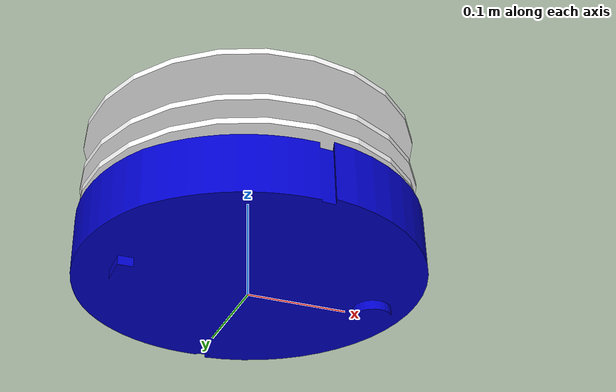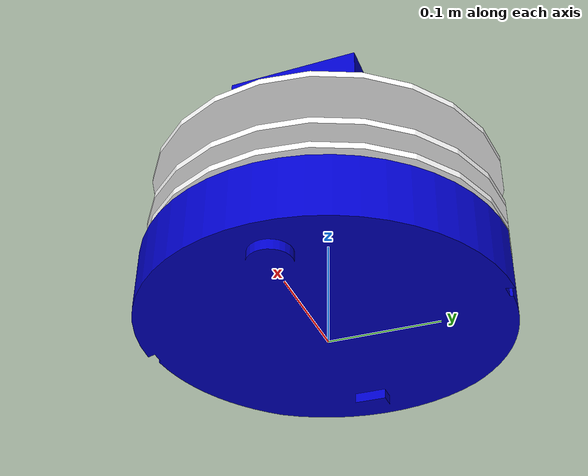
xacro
<?xml version="1.0"?>

<robot name="turtlebot"
    xmlns:sensor="http://playerstage.sourceforge.net/gazebo/xmlschema/#sensor"
    xmlns:controller="http://playerstage.sourceforge.net/gazebo/xmlschema/#controller"
    xmlns:interface="http://playerstage.sourceforge.net/gazebo/xmlschema/#interface">

    <!-- Included URDF Files -->
    <include filename="$(find turtlebot_urdf)/urdf/turtlebot_base.xacro" />

    <turtlebot />
</robot>

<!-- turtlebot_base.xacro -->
<robot
    xmlns:sensor="http://playerstage.sourceforge.net/gazebo/xmlschema/#sensor"
    xmlns:controller="http://playerstage.sourceforge.net/gazebo/xmlschema/#controller"
    xmlns:interface="http://playerstage.sourceforge.net/gazebo/xmlschema/#interface">

    <!-- Included URDF Files -->
    <include filename="$(find turtlebot_urdf)/urdf/materials.urdf.xacro" />

    <!-- Properties (Constants) -->
    <property name="M_PI" value="3.14159"/>

    <property name="base_size_x" value="0.33" />
    <property name="base_size_y" value="0.33" />
    <property name="base_calibration_factor" value="0.5" />

    <macro name="turtlebot">
        <!-- base_footprint is a fictitious link(frame) that is on the ground right below base_link origin,
             navigation stack depends on this frame -->
        <link name="base_footprint">
            <inertial>
                <mass value="0.0001" />
                <origin xyz="0 0 0" />
                <inertia ixx="0.0001" ixy="0.0" ixz="0.0"
                         iyy="0.0001" iyz="0.0"
                         izz="0.0001" />
            </inertial>

            <visual>
                <origin xyz="0 0 0" rpy="0 0 0" />
                <geometry>
                    <box size="0.001 0.001 0.001" />
                </geometry>
                <material name="Green" />
            </visual>

            <collision>
                <origin xyz="0 0 0.017" rpy="0 0 0" />
                <geometry>
                  <box size="0.001 0.001 0.001" />
                </geometry>
            </collision>
        </link>

        <joint name="base_footprint_joint" type="fixed">
            <!-- NB: While you would think this would make it go up, it is oddly reversed.
                 This moves the joint to 0,0,0 where we want it for rviz, etc. -->
            <origin xyz="0 0 0.017" rpy="0 0 0" />
            <parent link="base_footprint"/>
            <child link="base_link" />
        </joint>

        <!-- Links and Joints (i.e., the robot) -->
        <link name="base_link">
            <inertial>
                <mass value="12" />
                <origin xyz="${-base_size_x/2} 0 0.017" />
                <inertia ixx="1.0" ixy="0.0" ixz="0.0"
                         iyy="1.0" iyz="0.0"
                         izz="1.0" />
            </inertial>

            <visual>
                <origin xyz="0.0 0.0 0.02" rpy="0 0 0" />
                <geometry>
                    <mesh filename="package://turtlebot_urdf/meshes/create_body.dae"/>
                </geometry>
                <material name="Blue" />
            </visual>

            <collision>
                <origin xyz="0.0 0.0 0.0" rpy="0 0 0" />
                <geometry>
                    <mesh filename="package://turtlebot_urdf/meshes/create_body.stl"/>
                </geometry>
            </collision>
        </link>

        <joint name="imu_joint" type="fixed">
            <!-- NB: While you would think this would make it go up, it is oddly reversed.
                 This moves the joint to 0,0,0 where we want it for rviz, etc. -->
            <origin xyz="0 0 0.03" rpy="0 0 0" />
            <parent link="base_link"/>
            <child link="gyro_link" />
        </joint>

        <link name="gyro_link">
            <inertial>
                <mass value="0.01" />
                <origin xyz="0 0 0.03" />
                <inertia ixx="1.0" ixy="0.0" ixz="0.0"
                         iyy="1.0" iyz="0.0"
                         izz="1.0" />
            </inertial>

            <visual>
                <origin xyz="0.0 0.0 0.02" rpy="0 0 0" />
                <geometry>
                  <cylinder radius="0.002" length="0.006" />
                </geometry>
                <material name="Blue" />
            </visual>

        </link>

        <joint name="base_layer1_joint" type="fixed">
          <origin xyz="0 0 0.064" rpy="0 0 0" />
          <parent link="base_link" />
          <child link="base_layer1_link" />
        </joint>

        <link name="base_layer1_link">
          <visual>
            <geometry>
              <cylinder radius="0.165" length="0.006" />
            </geometry>
            <material name="White" />
          </visual>
          <inertial>
              <mass value="0.0001" />
              <origin xyz="0 0 0" />
              <inertia ixx="0.0001" ixy="0.0" ixz="0.0"
                       iyy="0.0001" iyz="0.0"
                       izz="0.0001" />
          </inertial>
        </link>

        <joint name="base_layer2_joint" type="fixed">
          <origin xyz="0 0 0.0254" rpy="0 0 0" />
          <parent link="base_layer1_link" />
          <child link="base_layer2_link" />
        </joint>

        <link name="base_layer2_link">
          <visual>
            <geometry>
              <cylinder radius="0.165" length="0.006" />
            </geometry>
            <material name="White" />
          </visual>
          <inertial>
              <mass value="0.0001" />
              <origin xyz="0 0 0" />
              <inertia ixx="0.0001" ixy="0.0" ixz="0.0"
                       iyy="0.0001" iyz="0.0"
                       izz="0.0001" />
          </inertial>
        </link>

        <joint name="base_layer3_joint" type="fixed">
          <origin xyz="0 0 0.0508" rpy="0 0 0" />
          <parent link="base_layer2_link" />
          <child link="base_layer3_link" />
        </joint>

        <link name="base_layer3_link">
          <visual>
            <geometry>
              <cylinder radius="0.165" length="0.006" />
            </geometry>
            <material name="White" />
          </visual>
          <inertial>
              <mass value="0.0001" />
              <origin xyz="0 0 0" />
              <inertia ixx="0.0001" ixy="0.0" ixz="0.0"
                       iyy="0.0001" iyz="0.0"
                       izz="0.0001" />
          </inertial>
        </link>

        <joint name="base_kinect_joint" type="fixed">
          <origin xyz="0.065 0 0.06" rpy="0 0 0" />
          <parent link="base_layer3_link" />
          <child link="base_kinect_link" />
        </joint>

        <link name="base_kinect_link">
          <visual>
            <geometry>
              <box size="0.064 0.121 0.0381" />
            </geometry>
            <material name="Blue" />
          </visual>
          <inertial>
              <mass value="0.0001" />
              <origin xyz="0 0 0" />
              <inertia ixx="0.0001" ixy="0.0" ixz="0.0"
                       iyy="0.0001" iyz="0.0"
                       izz="0.0001" />
          </inertial>
        </link>

        <joint name="base_kinect_depth_joint" type="fixed">
          <origin xyz="0 0.028 0" rpy="0 0 0" />
          <parent link="base_kinect_link" />
          <child link="base_kinect_depth_frame" />
        </joint>

        <link name="base_kinect_depth_frame">
          <inertial>
              <mass value="0.0001" />
              <origin xyz="0 0 0" />
              <inertia ixx="0.0001" ixy="0.0" ixz="0.0"
                       iyy="0.0001" iyz="0.0"
                       izz="0.0001" />
          </inertial>
        </link>

        <joint name="kinect_depth_optical_joint" type="fixed">
          <origin xyz="0 0 0" rpy="${-M_PI/2} 0 ${-M_PI/2}" />
          <parent link="base_kinect_depth_frame" />
          <child link="base_kinect_depth_optical_frame" />
        </joint>

        <link name="base_kinect_depth_optical_frame">
          <inertial>
              <mass value="0.0001" />
              <origin xyz="0 0 0" />
              <inertia ixx="0.0001" ixy="0.0" ixz="0.0"
                       iyy="0.0001" iyz="0.0"
                       izz="0.0001" />
          </inertial>
        </link>

        <joint name="base_kinect_rgb_joint" type="fixed">
          <origin xyz="0 -0.005 0" rpy="0 0 0" />
          <parent link="base_kinect_link" />
          <child link="base_kinect_rgb_frame" />
        </joint>

        <link name="base_kinect_rgb_frame">
          <inertial>
              <mass value="0.0001" />
              <origin xyz="0 0 0" />
              <inertia ixx="0.0001" ixy="0.0" ixz="0.0"
                       iyy="0.0001" iyz="0.0"
                       izz="0.0001" />
          </inertial>
        </link>

        <joint name="kinect_rgb_optical_joint" type="fixed">
          <origin xyz="0 0 0" rpy="${-M_PI/2} 0 ${-M_PI/2}" />
          <parent link="base_kinect_rgb_frame" />
          <child link="base_kinect_rgb_optical_frame" />
        </joint>

        <link name="base_kinect_rgb_optical_frame">
          <inertial>
              <mass value="0.0001" />
              <origin xyz="0 0 0" />
              <inertia ixx="0.0001" ixy="0.0" ixz="0.0"
                       iyy="0.0001" iyz="0.0"
                       izz="0.0001" />
          </inertial>
        </link>

    </macro>
</robot>

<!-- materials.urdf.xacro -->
<robot>

    <material name="Black">
        <color rgba="0.0 0.0 0.0 1.0"/>
    </material>

    <material name="Blue">
        <color rgba="0.0 0.0 0.8 1.0"/>
    </material>

    <material name="Green">
        <color rgba="0.0 0.8 0.0 1.0"/>
    </material>

    <material name="Grey">
        <color rgba="0.7 0.7 0.7 1.0"/>
    </material>

    <material name="Grey2">
        <color rgba="0.9 0.9 0.9 1.0"/>
    </material>

    <material name="Red">
        <color rgba="0.8 0.0 0.0 1.0"/>
    </material>

    <material name="White">
        <color rgba="1.0 1.0 1.0 1.0"/>
    </material>

</robot>
